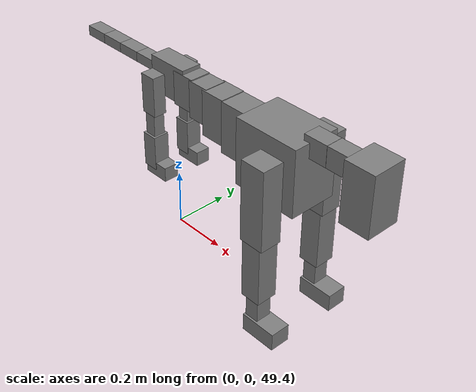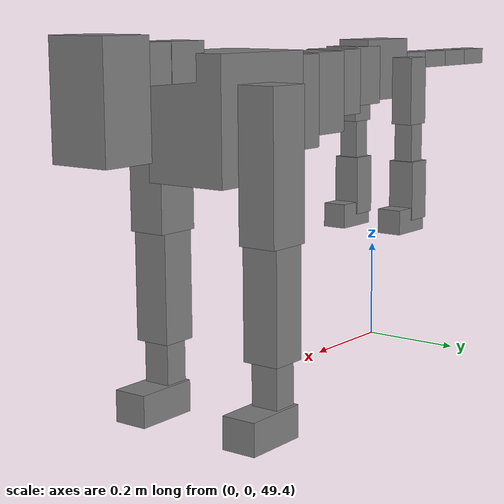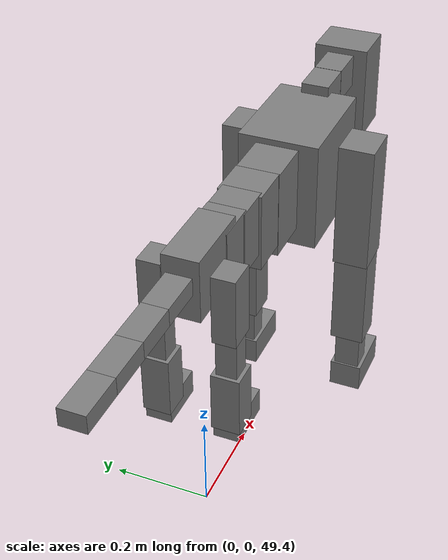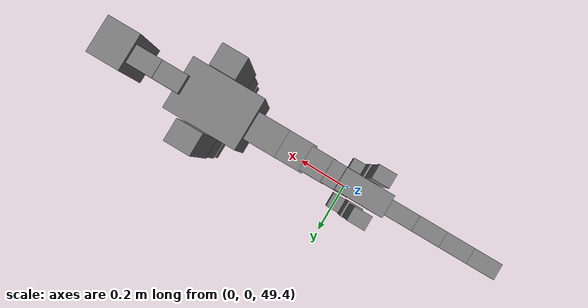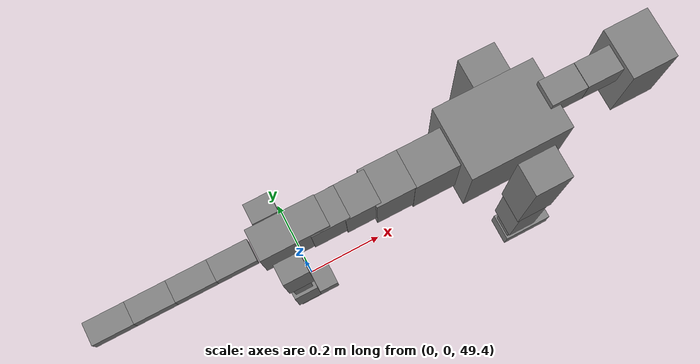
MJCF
<mujoco model="dog">

    <default>
        <joint armature="0.02" stiffness="1" damping="0.2" limited="true"/>
        <geom condim="3" friction="1 0.05 0.05" margin="0.01"/>
        <motor ctrllimited="true" ctrlrange="-1.0 1.0" forcelimited="true" gear="50"/>
    </default>

    <compiler inertiafromgeom="true" angle="radian"/>

    <option timestep="0.016" iterations="50" tolerance="1e-10" solver="Newton" jacobian="dense" cone="pyramidal"/>

    <size nconmax="20000" njmax="60000" nstack="5000000"/>
    <visual>
        <map force="0.1" zfar="30"/>
        <rgba haze="0.15 0.25 0.35 1"/>
        <quality shadowsize="2048"/>
        <global offwidth="800" offheight="800"/>
    </visual>

    <asset>
        <texture type="skybox" builtin="gradient" rgb1="0.3 0.5 0.7" rgb2="0 0 0" width="512" height="512"/>
        <texture name="texplane" type="2d" builtin="checker" rgb1=".2 .3 .4" rgb2=".1 0.15 0.2" width="512" height="512"
                 mark="cross" markrgb=".8 .8 .8"/>
        <texture name="texgeom" type="cube" builtin="flat" mark="cross" width="127" height="1278" rgb1="0.8 0.6 0.4"
                 rgb2="0.8 0.6 0.4" markrgb="1 1 1" random="0.01"/>

        <material name="matplane" reflectance="0.3" texture="texplane" texrepeat="1 1" texuniform="true"/>
        <material name="matgeom" texture="texgeom" texuniform="true" rgba="0.8 0.6 .4 1"/>
    </asset>

    <worldbody>
        <geom name="floor" pos="0 0 0" size="0 0 .25" type="plane" material="matplane" condim="3"/>

        <light directional="false" diffuse=".2 .2 .2" specular="0 0 0" pos="0 0 5" dir="0 0 -1" castshadow="false"/>
        <light mode="targetbodycom" target="torso" directional="false" diffuse=".8 .8 .8" specular="0.3 0.3 0.3"
               pos="0 0 4.0" dir="0 0 -1"/>

        <body name="root" pos="0 0 50">
            <freejoint name="root_1"/>
            <geom type="box" pos="0 0 -0.02" size="0.0774  0.0358  0.063" density="2030"/>

            <body name="spine1" pos="0.054 0 0">
                <joint name="spine1_y" axis="0 1 0" range="0 0.7" limited="true"/>
                <geom type="box" pos="0.02375 0 -0.03" size="0.04375  0.0375  0.05985" density="2030"/>

                <body name="spine2" pos="0.0612 0 0">
                    <joint name="spine2_y" axis="0 1 0" range="-0.15 0.15" limited="true"/>
                    <geom type="box" pos="0.03555  0  -0.04" size="0.04055  0.039  0.06615" density="2030"/>

                    <body name="spine3" pos="0.0730 0 0">
                        <joint name="spine3_y" axis="0 1 0" range="-0.15 0.15" limited="true"/>
                        <geom type="box" pos="0.03555  0  -0.057" size="0.04555  0.0445  0.081" density="2030"/>

                        <body name="spine4" pos="0.0780 0 0">
                            <joint name="spine4_y" axis="0 1 0" range="-0.15 0.15" limited="true"/>
                            <geom type="box" pos="0.05265  0  -0.07" size="0.05265  0.045  0.09135" density="2030"/>

                            <body name="torso" pos="0.1082 0 0">
                                <joint name="torso_y" axis="0 1 0" range="-0.15 0.15" limited="true"/>
                                <geom type="box" pos="0.11925  0  -0.085" size="0.11925  0.085  0.11745"
                                      density="2030"/>

                                <body name="neck1" pos="0.2160  0   0.0180">
                                    <joint name="neck1_y" axis="0 1 0" range="-1.2  -1" limited="true"/>
                                    <geom type="box" pos="0.0423  0  0" size="0.0423  0.03  0.036" density="2325"/>

                                    <body name="neck2" pos="0.0853  0  0">
                                        <joint name="neck2_y" axis="0 1 0" range="0.1  0" limited="true"/>
                                        <geom type="box" pos="0.0423  0  0" size="0.0423  0.03  0.036" density="2325"/>

                                        <body name="head" pos="0.0853  0  0">
                                            <joint name="head_y" axis="0 1 0" range="-0.3  -0.2" limited="true"/>
                                            <geom type="box" pos="0.0531  0  -0.055" size="0.0531  0.06  0.1044"
                                                  density="4030"/>

                                        </body>
                                    </body>
                                </body>

                                <body name="front_shoulder" pos="0.156  0   -0.0480">
                                    <joint name="front_shoulder_y" axis="0 1 0" range="-1 1.5" limited="true"/>
                                    <geom type="box" pos="0 0.13 -0.1156" size="0.0451  0.0386  0.1422" density="1158"/>
                                    <geom type="box" pos="0 -0.13 -0.1156" size="0.0451  0.0386  0.1422"
                                          density="1158"/>

                                    <body name="front_elbow" pos="0  0  -0.2312">
                                        <joint name="front_elbow_y" axis="0 1 0" range="-2 0" limited="true"/>
                                        <geom type="box" pos="0 0.13 -0.1197" size="0.0365  0.0373  0.1197"
                                              density="1081"/>
                                        <geom type="box" pos="0 -0.13 -0.1197" size="0.0365  0.0373  0.1197"
                                              density="1081"/>

                                        <body name="front_wrist" pos="0  0  -0.2394">
                                            <joint name="front_wrist_y" axis="0 1 0" range="-0.2 0" limited="true"/>
                                            <geom type="box" pos="0 0.13 -0.0488" size="0.0252  0.0280  0.0620"
                                                  density="1664"/>
                                            <geom type="box" pos="0 -0.13 -0.0488" size="0.0252  0.0280  0.0620"
                                                  density="1664"/>

                                            <body name="front_finger_end" pos="0  0  -0.0977">
                                                <joint name="front_finger_y" axis="0 1 0" range="-0.4 1"
                                                       limited="true"/>
                                                <geom type="box" pos="0.0354  0.13  -0.0164"
                                                      size="0.0650  0.0354  0.0314" density="1515"/>
                                                <geom type="box" pos="0.0354  -0.13  -0.0164"
                                                      size="0.0650  0.0354  0.0314" density="1515"/>

                                            </body>

                                        </body>
                                    </body>
                                </body>

                            </body>
                        </body>
                    </body>
                </body>
            </body>

            <body name="back_hip" pos="-0.03 0 -0.018">
                <joint name="back_hip_y" axis="0 1 0" range="-1.5 0.3" limited="true"/>
                <geom type="box" pos="0 0.07 -0.0475" size="0.0295  0.0232  0.0703" density="1154"/>
                <geom type="box" pos="0 -0.07 -0.0475" size="0.0295  0.0232  0.0703" density="1154"/>

                <body name="back_knee" pos="0  0  -0.0950">
                    <joint name="back_knee_y" axis="0 1 0" range="0 2.8" limited="true"/>
                    <geom type="box" pos="0 0.07 -0.0564" size="0.0209  0.0206  0.0720" density="1227"/>
                    <geom type="box" pos="0 -0.07 -0.0564" size="0.0209  0.0206  0.0720" density="1227"/>

                    <body name="back_ankle" pos="0  0  -0.1128">
                        <joint name="back_ankle_y" axis="0 1 0" range="-2.2 0" limited="true"/>
                        <geom type="box" pos="0 0.07 -0.0512" size="0.0282  0.0282  0.0624" density="1284"/>
                        <geom type="box" pos="0 -0.07 -0.0512" size="0.0282  0.0282  0.0624" density="1284"/>

                        <body name="back_toe_end" pos="0  0  -0.1023">
                            <joint name="back_toe_y" axis="0 1 0" range="-0.4 1" limited="true"/>
                            <geom type="box" pos="0.0264  0.07  -0.0108" size="0.0483  0.0264  0.0258" density="1515"/>
                            <geom type="box" pos="0.0264  -0.07  -0.0108" size="0.0483  0.0264  0.0258" density="1515"/>

                        </body>
                    </body>
                </body>
            </body>

            <body name="tail1" pos="-0.074 0 -0.006">
                <joint name="tail1_y" axis="0 1 0" range="-0.2 0.2" limited="true"/>
                <geom type="box" pos="-0.0536  0  0" size="0.045  0.025  0.0175" density="1587"/>

                <body name="tail2" pos="-0.09 0 0">
                    <joint name="tail2_y" axis="0 1 0" range="-0.2 0.2" limited="true"/>
                    <geom type="box" pos="-0.0536  0  0" size="0.045  0.025  0.0175" density="1587"/>

                    <body name="tail3" pos="-0.09 0 0">
                        <joint name="tail3_y" axis="0 1 0" range="-0.2 0.2" limited="true"/>
                        <geom type="box" pos="-0.0536  0  0" size="0.045  0.025  0.0175" density="1587"/>

                        <body name="tail4" pos="-0.09 0 0">
                            <joint name="tail4_y" axis="0 1 0" range="-0.2 0.2" limited="true"/>
                            <geom type="box" pos="-0.0536  0  0" size="0.045  0.025  0.0175" density="1587"/>

                        </body>
                    </body>
                </body>
            </body>
        </body>
    </worldbody>

    <actuator>
        <motor joint="spine1_y" forcerange="-150 150     "/>
        <motor joint="spine2_y" forcerange="-150 150     "/>
        <motor joint="spine3_y" forcerange="-150 150     "/>
        <motor joint="spine4_y" forcerange="-150 150     "/>
        <motor joint="torso_y" forcerange="-150 150     "/>
        <motor joint="neck1_y" forcerange="-100 100       "/>
        <motor joint="neck2_y" forcerange="-100 100       "/>
        <motor joint="head_y" forcerange="-150 150       "/>
        <motor joint="front_shoulder_y" forcerange="-161.23 195.88"/>
        <motor joint="front_elbow_y" forcerange="-172.78 198.74"/>
        <motor joint="front_wrist_y" forcerange="-119.44 104.78"/>
        <motor joint="front_finger_y" forcerange="-86.38 62.60"/>
        <motor joint="back_hip_y" forcerange="-265.77 243.16"/>
        <motor joint="back_knee_y" forcerange="-268.38 231.77"/>
        <motor joint="back_angle_y" forcerange="-134.87 216.25"/>
        <motor joint="back_toe_y" forcerange="-20.09 110.72"/>
        <motor joint="tail1_y" forcerange="-50 50     "/>
        <motor joint="tail2_y" forcerange="-50 50     "/>
        <motor joint="tail3_y" forcerange="-50 50     "/>
        <motor joint="tail4_y" forcerange="-50 50     "/>
    </actuator>
</mujoco>
